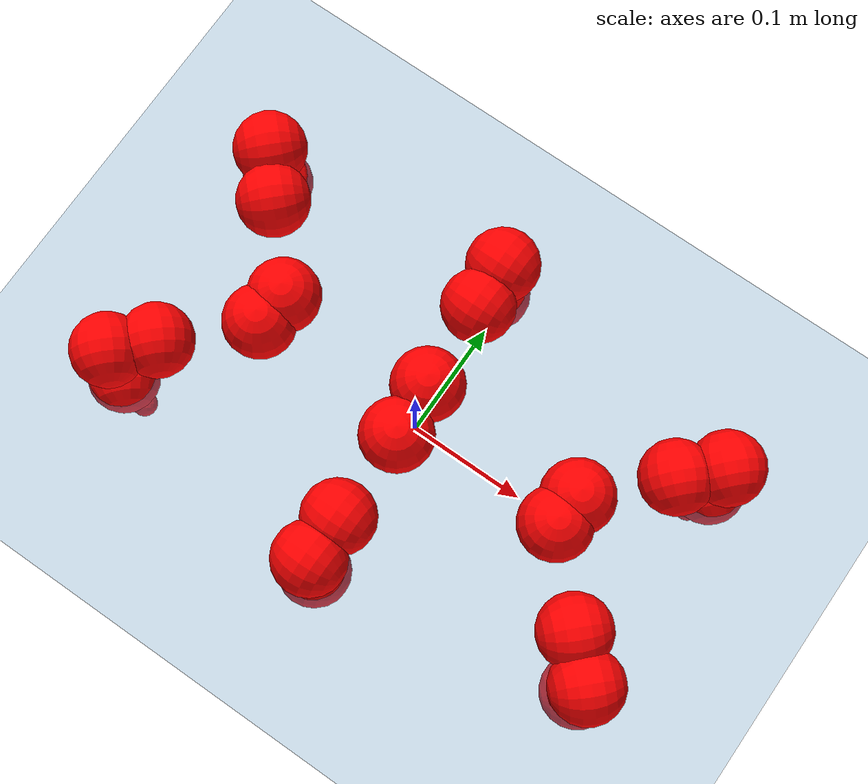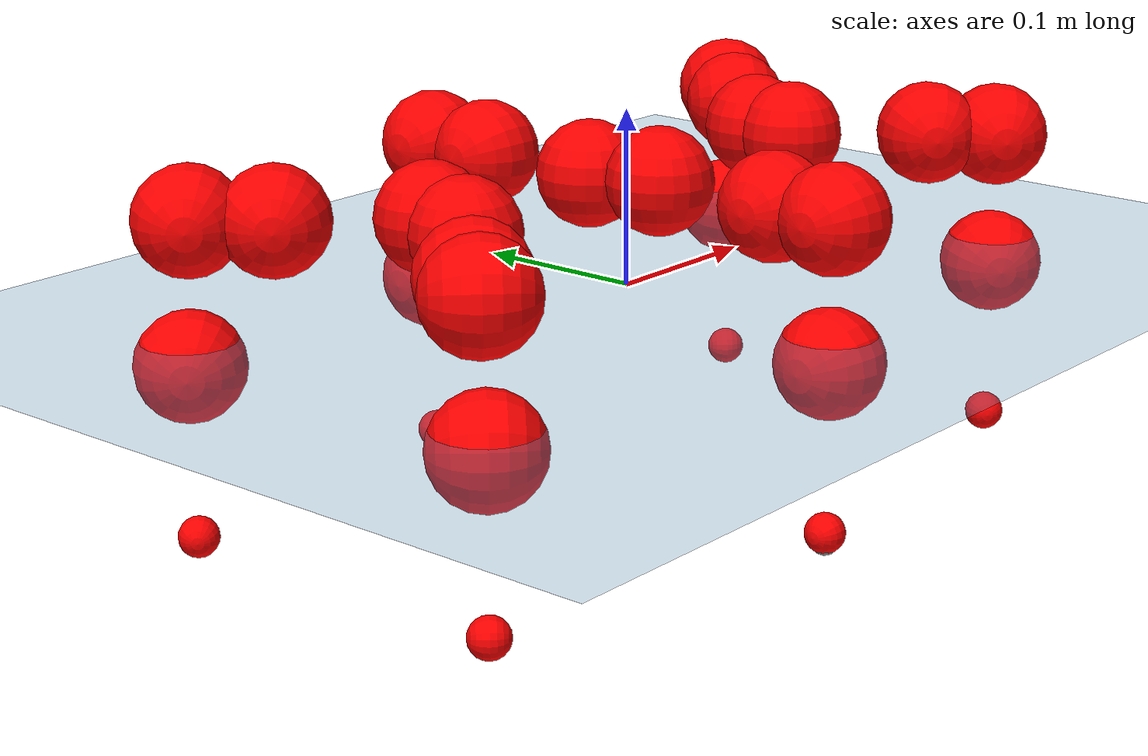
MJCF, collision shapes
<mujoco model="Golem">
  <compiler angle="radian" assetdir="assets" balanceinertia="true" inertiafromgeom="false"/>

  <option timestep="0.005" density="1.2" viscosity="2e-05"/>

  <size nkey="1"/>

  <visual>
    <quality shadowsize="8192"/>
    <map shadowclip="0.5"/>
  </visual>

  <default>
    <default class="/">
      <joint armature="0.01" damping="0.01" frictionloss="0.01"/>
      <geom contype="0" conaffinity="0" group="1" solref="-1000 -80"/>
      <site size="0.01 0.005 0.005" group="5"/>
      <general forcelimited="true" biastype="affine" gainprm="25" biasprm="0 -25 -0.5"/>
      <default class="visual">
        <geom type="mesh" group="2"/>
      </default>
      <default class="collision">
        <geom group="3"/>
      </default>
      <default class="foot">
        <geom size="0.01 0 0" condim="6" group="4" priority="1" solimp="0.015 1 0.01"/>
      </default>
      <default class="reward_collision_sphere">
        <geom group="5" rgba="1 0 0 1"/>
      </default>
    </default>
  </default>

  <asset>
    <texture type="skybox" colorspace="auto" name="//unnamed_texture_0" builtin="gradient" rgb1="0.95 0.95 0.95" rgb2="0.95 0.95 0.95" width="100" height="600"/>
    <texture type="2d" colorspace="auto" name="texplane" builtin="checker" rgb1="0.345 0.575 0.748" rgb2="0.345 0.575 0.748" markrgb="1 1 1" width="512" height="512"/>
    <material name="MatPlane" class="/" texture="texplane" texuniform="true" texrepeat="2 2" specular="0.9"/>
    <mesh name="body" class="/" file="body.stl" scale="0.001 0.001 0.001"/>
    <mesh name="coxa" class="/" file="coxa.stl" scale="0.001 0.001 0.001"/>
    <mesh name="femur" class="/" file="femur.stl" scale="0.001 0.001 0.001"/>
    <mesh name="tibia" class="/" file="tibia.stl" scale="0.001 0.001 0.001"/>
    <mesh name="tarsus" class="/" file="tarsus.stl" scale="0.001 0.001 0.001"/>
  </asset>

  <worldbody>
    <geom name="floor" class="/" size="100 100 0.125" type="plane" group="0" material="MatPlane"/>
    <light name="toplight_shadow" class="/" pos="0 0 5" dir="0.0990148 0.0990148 -0.990148" type="directional" ambient="0.04 0.04 0.04" diffuse="0.55 0.55 0.55" specular="0.12 0.12 0.12"/>
    <light name="toplight_fill" class="/" pos="0 0 5" dir="0.0990148 0.0990148 -0.990148" type="directional" castshadow="false" ambient="0.04 0.04 0.04" diffuse="0.3 0.3 0.3" specular="0.08 0.08 0.08"/>
    <body name="trunk" pos="-0.000337535 0.000326608 -0.000926607" quat="0.999999 -0.000604069 0.000285274 -0.00108096">
      <inertial pos="-9.27842e-05 -0.00119984 -0.00266075" quat="1 -0.000524636 -4.68829e-05 -0.000135549" mass="1.64445" diaginertia="0.00549781 7.42291e-05 0.00980113"/>
      <joint name="//unnamed_joint_0" type="free"/>
      <geom name="//unnamed_geom_1" class="/" pos="0 0 0.063901" quat="1 0 0 0" type="mesh" rgba="0.9 0.9 0.9 1" mesh="body"/>
      <site name="imu" class="/" pos="0.128994 -0.00785784 0.100469" size="0.00755173"/>
      <camera name="track" class="/" pos="0 -0.754513 0" quat="0.707107 0.707107 0 0" mode="trackcom"/>
      <camera name="ego_camera" class="/" pos="0.115675 0 0.0998454" quat="-0.5 -0.5 0.5 0.5"/>
      <body name="coxa_RR" pos="-0.159734 -0.0299757 0.0621055" quat="0.382529 0.000985285 0.000803392 -0.923943">
        <inertial pos="0.000421708 -0.000453092 0.00294277" quat="0.999951 -0.00418103 -0.00874134 -0.00183413" mass="0.0900363" diaginertia="0.0057789 7.93688e-05 0.0101722"/>
        <joint name="coxa_joint_RR" class="/" pos="0 0 0" axis="0.00017946 0.00075422 -1" range="-3.18879 3.08424" armature="0.00756913" damping="0.0131657" frictionloss="0.00817275"/>
        <geom name="//unnamed_geom_2" class="/" type="mesh" rgba="0.2 0.2 0.2 1" mesh="coxa"/>
        <geom name="//unnamed_geom_3" class="reward_collision_sphere" size="0.0302069" pos="-0.0266942 0 0"/>
        <body name="femur_RR" pos="0.054551 0.00140716 0.000158722" quat="0.499809 -0.500343 0.500236 0.499611">
          <inertial pos="0.000289096 -0.000650865 0.00116367" quat="1 -0.000208761 -0.000422474 -7.39784e-05" mass="0.0860943" diaginertia="0.00561493 7.72775e-05 0.00994023"/>
          <joint name="femur_joint_RR" class="/" pos="0 0 0" axis="-0.00369428 0.0044378 -0.999983" range="-3.08532 3.14654" armature="0.00648794" damping="0" frictionloss="0.0077371"/>
          <geom name="//unnamed_geom_4" class="/" type="mesh" rgba="0.9 0.9 0.9 1" mesh="femur"/>
          <geom name="//unnamed_geom_5" class="reward_collision_sphere" size="0.0302069"/>
          <body name="tibia_RR" pos="-0.00252169 -0.038408 0.00183023" quat="0.000499957 0.999999 -0.000666021 -0.000747888">
            <inertial pos="0.0026331 0.00184926 -0.000546941" quat="1 -0.000951532 0.000153567 -3.67299e-05" mass="0.0890323" diaginertia="0.00561092 7.68404e-05 0.00960879"/>
            <joint name="tibia_joint_RR" class="/" pos="0 0 0" axis="-0.0129151 -0.00299818 0.999912" range="-3.08552 3.14537" armature="0.00663462" damping="0" frictionloss="0.00793418"/>
            <geom name="//unnamed_geom_6" class="/" type="mesh" rgba="0.2 0.2 0.2 1" mesh="tibia"/>
            <geom name="//unnamed_geom_7" class="reward_collision_sphere" size="0.0302069"/>
            <body name="tarsus_RR" pos="0.0754282 0.00155655 -0.0020009" quat="1 -7.61064e-06 7.70386e-05 -3.00989e-05">
              <inertial pos="0.0519711 0.00131129 -0.00138524" quat="0.498725 0.500282 0.50214 0.498845" mass="0.0886293" diaginertia="0.00573966 7.61922e-05 0.0103161"/>
              <joint name="tarsus_joint_RR" class="/" pos="0 0 0" axis="-0.00721497 -0.00953662 0.999928" range="-3.15537 3.15646" armature="0.0079432" damping="0" frictionloss="0.0071482"/>
              <geom name="//unnamed_geom_8" class="/" type="mesh" rgba="0.9 0.9 0.9 1" mesh="tarsus"/>
              <geom name="foot_1" class="foot" size="0.00738274" pos="0.0996585 0 0" quat="0 -0.707107 0 0.707107"/>
              <geom name="//unnamed_geom_10" class="reward_collision_sphere" size="0.0302069"/>
              <geom name="//unnamed_geom_11" class="reward_collision_sphere" size="0.0113276" pos="0.0956543 0 0"/>
              <site name="foot_1" class="foot" pos="0.0996585 0 0" quat="0 -0.707107 0 0.707107" size="0.00755173"/>
            </body>
          </body>
        </body>
      </body>
      <body name="coxa_RM" pos="-0.000474909 -0.0511034 0.06444" quat="0.706606 9.08626e-05 0.00120935 -0.707606">
        <inertial pos="0.00125886 -0.00253201 0.00138174" quat="1 0.000508653 0.000207809 -0.000789101" mass="0.083978" diaginertia="0.00543833 7.67602e-05 0.00994076"/>
        <joint name="coxa_joint_RM" class="/" pos="0 0 0" axis="-0.01345 -0.0040615 -0.999901" range="-3.13191 3.19006" armature="0.00851382" damping="0" frictionloss="0.00670498"/>
        <geom name="//unnamed_geom_12" class="/" type="mesh" rgba="0.2 0.2 0.2 1" mesh="coxa"/>
        <geom name="//unnamed_geom_13" class="reward_collision_sphere" size="0.0302069" pos="-0.0266942 0 0"/>
        <body name="femur_RM" pos="0.0503032 0.000566819 -0.00130943" quat="0.499989 -0.499962 0.500026 0.500022">
          <inertial pos="0.00187116 -0.00108587 -0.000210435" quat="0.999989 -0.00217508 -0.000604434 -0.00411029" mass="0.0893565" diaginertia="0.00555164 7.82159e-05 0.0101477"/>
          <joint name="femur_joint_RM" class="/" pos="0 0 0" axis="-0.000124001 6.57678e-05 -1" range="-3.16047 3.12727" armature="0.00751416" damping="0.0123464" frictionloss="0.00833561"/>
          <geom name="//unnamed_geom_14" class="/" type="mesh" rgba="0.9 0.9 0.9 1" mesh="femur"/>
          <geom name="//unnamed_geom_15" class="reward_collision_sphere" size="0.0302069"/>
          <body name="tibia_RM" pos="0.000554243 -0.0384827 0.000187733" quat="0.000207057 1 0.000145279 0.000338749">
            <inertial pos="0.000281029 -0.00234682 -0.0027345" quat="0.999912 -0.00912139 -0.00857188 0.00433438" mass="0.0865277" diaginertia="0.00580668 7.71059e-05 0.0103177"/>
            <joint name="tibia_joint_RM" class="/" pos="0 0 0" axis="0.00109086 -0.00258931 0.999996" range="-3.16058 3.1291" armature="0.00849094" damping="0.00676306" frictionloss="0.00853734"/>
            <geom name="//unnamed_geom_16" class="/" type="mesh" rgba="0.2 0.2 0.2 1" mesh="tibia"/>
            <geom name="//unnamed_geom_17" class="reward_collision_sphere" size="0.0302069"/>
            <body name="tarsus_RM" pos="0.0782029 0.000181305 0.000838167" quat="1 6.03182e-05 -0.000358376 -6.62885e-06">
              <inertial pos="0.0556641 0.00045738 0.000578831" quat="0.502659 0.494977 0.494947 0.507305" mass="0.0850108" diaginertia="0.00564483 7.68641e-05 0.00967911"/>
              <joint name="tarsus_joint_RM" class="/" pos="0 0 0" axis="-3.28347e-05 -0.000594569 1" range="-3.0856 3.15866" armature="0.00857327" damping="0.00370366" frictionloss="0.00765652"/>
              <geom name="//unnamed_geom_18" class="/" type="mesh" rgba="0.9 0.9 0.9 1" mesh="tarsus"/>
              <geom name="foot_2" class="foot" size="0.00835762" pos="0.0996585 0 0" quat="0 -0.707107 0 0.707107"/>
              <geom name="//unnamed_geom_20" class="reward_collision_sphere" size="0.0302069"/>
              <geom name="//unnamed_geom_21" class="reward_collision_sphere" size="0.0113276" pos="0.0956543 0 0"/>
              <site name="foot_2" class="foot" pos="0.0996585 0 0" quat="0 -0.707107 0 0.707107" size="0.00755173"/>
            </body>
          </body>
        </body>
      </body>
      <body name="coxa_RF" pos="0.156367 -0.0305484 0.0650144" quat="0.923949 0.000208518 0.000173899 -0.382515">
        <inertial pos="-0.00208581 -0.00253536 0.00231822" quat="0.999937 0.0004209 0.0093168 0.00624762" mass="0.0864289" diaginertia="0.00571054 7.51244e-05 0.00987375"/>
        <joint name="coxa_joint_RF" class="/" pos="0 0 0" axis="0.00145341 -0.00140467 -0.999998" stiffness="0.000317209" range="-3.14878 3.19276" armature="0.00686647" damping="0.000177306" frictionloss="0.007856"/>
        <geom name="//unnamed_geom_22" class="/" type="mesh" rgba="0.2 0.2 0.2 1" mesh="coxa"/>
        <geom name="//unnamed_geom_23" class="reward_collision_sphere" size="0.0302069" pos="-0.0266942 0 0"/>
        <body name="femur_RF" pos="0.0551369 -0.00144292 -0.00121085" quat="0.500487 -0.500132 0.500476 0.498904">
          <inertial pos="0.000344572 -0.00258084 0.00280255" quat="0.999909 -0.00334176 -0.000239041 -0.0130312" mass="0.0868566" diaginertia="0.00543512 7.36464e-05 0.0100233"/>
          <joint name="femur_joint_RF" class="/" pos="0 0 0" axis="-0.000507931 0.000342877 -1" range="-3.09664 3.13667" armature="0.00728145" damping="0" frictionloss="0.00652935"/>
          <geom name="//unnamed_geom_24" class="/" type="mesh" rgba="0.9 0.9 0.9 1" mesh="femur"/>
          <geom name="//unnamed_geom_25" class="reward_collision_sphere" size="0.0302069"/>
          <body name="tibia_RF" pos="0.00200119 -0.0412724 0.00105125" quat="-0.000988502 0.999999 -0.000284504 -0.000687026">
            <inertial pos="-0.000314342 0.00179101 -0.000168612" quat="0.999946 0.00601972 0.00670433 0.00516209" mass="0.0871864" diaginertia="0.00565488 7.68424e-05 0.0101343"/>
            <joint name="tibia_joint_RF" class="/" pos="0 0 0" axis="0.0108411 -0.00556255 0.999926" range="-3.11768 3.12901" armature="0.00761143" damping="0.00126501" frictionloss="0.00757686"/>
            <geom name="//unnamed_geom_26" class="/" type="mesh" rgba="0.2 0.2 0.2 1" mesh="tibia"/>
            <geom name="//unnamed_geom_27" class="reward_collision_sphere" size="0.0302069"/>
            <body name="tarsus_RF" pos="0.0778438 -1.8911e-05 -0.00098823" quat="0.999999 -0.000171434 0.00138087 0.00013556">
              <inertial pos="0.0506865 0.000302885 0.00257527" quat="0.494089 0.5004 0.496044 0.509329" mass="0.0817097" diaginertia="0.00557201 7.47362e-05 0.00960466"/>
              <joint name="tarsus_joint_RF" class="/" pos="0 0 0" axis="0.013937 -0.00580281 0.999886" range="-3.086 3.1206" armature="0.00760462" damping="0" frictionloss="0.0083311"/>
              <geom name="//unnamed_geom_28" class="/" type="mesh" rgba="0.9 0.9 0.9 1" mesh="tarsus"/>
              <geom name="foot_3" class="foot" size="0.00737401" pos="0.0996585 0 0" quat="0 -0.707107 0 0.707107"/>
              <geom name="//unnamed_geom_30" class="reward_collision_sphere" size="0.0302069"/>
              <geom name="//unnamed_geom_31" class="reward_collision_sphere" size="0.0113276" pos="0.0956543 0 0"/>
              <site name="foot_3" class="foot" pos="0.0996585 0 0" quat="0 -0.707107 0 0.707107" size="0.00755173"/>
            </body>
          </body>
        </body>
      </body>
      <body name="coxa_LR" pos="-0.156015 0.0350482 0.0650316" quat="0.381416 -0.000112417 0.000411591 0.924404">
        <inertial pos="0.00304968 0.000375072 -0.00107444" quat="0.999925 -0.00959623 -0.00624762 -0.00431452" mass="0.0856996" diaginertia="0.0054888 7.6269e-05 0.00990287"/>
        <joint name="coxa_joint_LR" class="/" pos="0 0 0" axis="-0.0019623 -0.0112422 -0.999935" range="-3.1171 3.13167" armature="0.00745136" damping="0.00534409" frictionloss="0.00736781"/>
        <geom name="//unnamed_geom_32" class="/" type="mesh" rgba="0.2 0.2 0.2 1" mesh="coxa"/>
        <geom name="//unnamed_geom_33" class="reward_collision_sphere" size="0.0302069" pos="-0.0266942 0 0"/>
        <body name="femur_LR" pos="0.053548 -0.00407031 -0.000769033" quat="0.500804 -0.500008 0.498863 0.500323">
          <inertial pos="-0.00034151 0.000338052 -4.09061e-05" quat="0.999997 -0.000390202 -0.00211341 -0.00133914" mass="0.0875853" diaginertia="0.00559897 7.68746e-05 0.0100678"/>
          <joint name="femur_joint_LR" class="/" pos="0 0 0" axis="0.000367929 0.00015811 1" range="-3.12053 3.18926" armature="0.00769607" damping="0" frictionloss="0.00853697"/>
          <geom name="//unnamed_geom_34" class="/" type="mesh" rgba="0.9 0.9 0.9 1" mesh="femur"/>
          <geom name="//unnamed_geom_35" class="reward_collision_sphere" size="0.0302069"/>
          <body name="tibia_LR" pos="2.6965e-05 -0.0440256 -0.00443564" quat="-6.40986e-05 1 -0.000312355 -0.000236984">
            <inertial pos="-8.86745e-05 -0.0020661 0.00223692" quat="0.999992 6.81229e-05 -0.0032084 -0.00230193" mass="0.0859274" diaginertia="0.00564706 7.95903e-05 0.0100698"/>
            <joint name="tibia_joint_LR" class="/" pos="0 0 0" axis="-0.0042732 -0.00252573 -0.999988" range="-3.15197 3.08493" armature="0.0065729" damping="0.00351665" frictionloss="0.00709871"/>
            <geom name="//unnamed_geom_36" class="/" type="mesh" rgba="0.2 0.2 0.2 1" mesh="tibia"/>
            <geom name="//unnamed_geom_37" class="reward_collision_sphere" size="0.0302069"/>
            <body name="tarsus_LR" pos="0.0784171 0.0025582 -0.00014291" quat="1 -0.000415995 0.0002613 0.000131392">
              <inertial pos="0.0539214 -0.000405745 0.000756519" quat="0.501557 0.50062 0.498694 0.499123" mass="0.0847362" diaginertia="0.00549958 7.52764e-05 0.00986184"/>
              <joint name="tarsus_joint_LR" class="/" pos="0 0 0" axis="-0.00143699 -0.000765074 -0.999999" range="-3.08513 3.14214" armature="0.00761404" damping="0" frictionloss="0.00719292"/>
              <geom name="//unnamed_geom_38" class="/" type="mesh" rgba="0.9 0.9 0.9 1" mesh="tarsus"/>
              <geom name="foot_4" class="foot" size="0.00681801" pos="0.0996585 0 0" quat="0.707107 0 -0.707107 0"/>
              <geom name="//unnamed_geom_40" class="reward_collision_sphere" size="0.0302069"/>
              <geom name="//unnamed_geom_41" class="reward_collision_sphere" size="0.0113276" pos="0.0956543 0 0"/>
              <site name="foot_4" class="foot" pos="0.0996585 0 0" quat="0.707107 0 -0.707107 0" size="0.00755173"/>
            </body>
          </body>
        </body>
      </body>
      <body name="coxa_LM" pos="-0.00397912 0.0492132 0.0622293" quat="0.706129 -9.02796e-05 -2.36132e-05 0.708083">
        <inertial pos="0.000239034 2.81387e-05 0.00235702" quat="0.999995 0.00214276 -0.00180909 -0.00132827" mass="0.0890628" diaginertia="0.00594124 7.89593e-05 0.0103176"/>
        <joint name="coxa_joint_LM" class="/" pos="0 0 0" axis="0.000397938 -3.85048e-05 -1" stiffness="0.00621076" range="-3.19051 3.15914" armature="0.0067008" damping="0.00248629" frictionloss="0.0084906"/>
        <geom name="//unnamed_geom_42" class="/" type="mesh" rgba="0.2 0.2 0.2 1" mesh="coxa"/>
        <geom name="//unnamed_geom_43" class="reward_collision_sphere" size="0.0302069" pos="-0.0266942 0 0"/>
        <body name="femur_LM" pos="0.0477707 0.00369102 0.00151478" quat="0.500041 -0.499932 0.500045 0.499983">
          <inertial pos="-0.000101262 -0.00236558 0.000508398" quat="0.999967 0.000301778 -0.00176874 -0.00793758" mass="0.0809069" diaginertia="0.00543217 7.43766e-05 0.00964485"/>
          <joint name="femur_joint_LM" class="/" pos="0 0 0" axis="0.00709097 -0.00375639 0.999968" range="-3.15812 3.14612" armature="0.00711966" damping="0.00267889" frictionloss="0.00825139"/>
          <geom name="//unnamed_geom_44" class="/" type="mesh" rgba="0.9 0.9 0.9 1" mesh="femur"/>
          <geom name="//unnamed_geom_45" class="reward_collision_sphere" size="0.0302069"/>
          <body name="tibia_LM" pos="-0.000731197 -0.0386399 0.00275837" quat="-0.000289379 1 0.000179977 3.14889e-05">
            <inertial pos="-0.00263944 0.000754732 -0.000665115" quat="1 -0.00013745 0.000319751 2.13538e-05" mass="0.0876225" diaginertia="0.00532652 7.59237e-05 0.00974074"/>
            <joint name="tibia_joint_LM" class="/" pos="0 0 0" axis="0.000622858 0.000245796 -1" range="-3.09366 3.14222" armature="0.00747795" damping="0" frictionloss="0.00701217"/>
            <geom name="//unnamed_geom_46" class="/" type="mesh" rgba="0.2 0.2 0.2 1" mesh="tibia"/>
            <geom name="//unnamed_geom_47" class="reward_collision_sphere" size="0.0302069"/>
            <body name="tarsus_LM" pos="0.0804593 -0.000208417 -0.00296534" quat="1 -3.39342e-05 -1.34377e-06 -2.25e-05">
              <inertial pos="0.0523607 0.000374636 -0.000211946" quat="0.501563 0.49872 0.498147 0.50156" mass="0.0830675" diaginertia="0.00547626 7.55322e-05 0.0101076"/>
              <joint name="tarsus_joint_LM" class="/" pos="0 0 0" axis="0.00849182 -0.00644448 -0.999943" range="-3.15164 3.09333" armature="0.00761545" damping="0.0123958" frictionloss="0.00658884"/>
              <geom name="//unnamed_geom_48" class="/" type="mesh" rgba="0.9 0.9 0.9 1" mesh="tarsus"/>
              <geom name="foot_5" class="foot" size="0.00729942" pos="0.0996585 0 0" quat="0.707107 0 -0.707107 0"/>
              <geom name="//unnamed_geom_50" class="reward_collision_sphere" size="0.0302069"/>
              <geom name="//unnamed_geom_51" class="reward_collision_sphere" size="0.0113276" pos="0.0956543 0 0"/>
              <site name="foot_5" class="foot" pos="0.0996585 0 0" quat="0.707107 0 -0.707107 0" size="0.00755173"/>
            </body>
          </body>
        </body>
      </body>
      <body name="coxa_LF" pos="0.158844 0.0341415 0.0654325" quat="0.92409 -0.000249859 3.60125e-05 0.382174">
        <inertial pos="0.00114927 -0.00208557 0.000582469" quat="0.99999 0.00182718 -0.00418892 -0.000262601" mass="0.0841046" diaginertia="0.00539842 7.16497e-05 0.00966209"/>
        <joint name="coxa_joint_LF" class="/" pos="0 0 0" axis="-0.00986196 -0.00160822 -0.99995" range="-3.18122 3.13973" armature="0.00744416" damping="0" frictionloss="0.00798266"/>
        <geom name="//unnamed_geom_52" class="/" type="mesh" rgba="0.2 0.2 0.2 1" mesh="coxa"/>
        <geom name="//unnamed_geom_53" class="reward_collision_sphere" size="0.0302069" pos="-0.0266942 0 0"/>
        <body name="femur_LF" pos="0.0504828 0.00196805 -0.0018028" quat="0.499633 -0.500687 0.499573 0.500106">
          <inertial pos="-0.000717349 0.000280552 0.000871367" quat="0.999917 0.00108368 0.0128529 0.000280845" mass="0.0860808" diaginertia="0.00560307 7.3672e-05 0.00969177"/>
          <joint name="femur_joint_LF" class="/" pos="0 0 0" axis="0.0102787 -0.0040668 0.999939" range="-3.13308 3.12432" armature="0.00765883" damping="0.0079059" frictionloss="0.00660427"/>
          <geom name="//unnamed_geom_54" class="/" type="mesh" rgba="0.9 0.9 0.9 1" mesh="femur"/>
          <geom name="//unnamed_geom_55" class="reward_collision_sphere" size="0.0302069"/>
          <body name="tibia_LF" pos="-0.000939365 -0.0399498 -0.00018527" quat="1.72317e-05 1 -9.14905e-05 -1.89657e-05">
            <inertial pos="-0.000810147 0.000313778 0.000590104" quat="0.999987 -0.00352907 -0.00181182 -0.00334539" mass="0.0880047" diaginertia="0.00560351 7.52221e-05 0.00974855"/>
            <joint name="tibia_joint_LF" class="/" pos="0 0 0" axis="-0.00527262 0.00921169 -0.999944" stiffness="0.00210794" range="-3.19228 3.14123" armature="0.00801466" damping="0.0098973" frictionloss="0.00679036"/>
            <geom name="//unnamed_geom_56" class="/" type="mesh" rgba="0.2 0.2 0.2 1" mesh="tibia"/>
            <geom name="//unnamed_geom_57" class="reward_collision_sphere" size="0.0302069"/>
            <body name="tarsus_LF" pos="0.0788495 0.000175626 0.000970294" quat="1 1.33288e-05 6.14883e-05 -0.000165004">
              <inertial pos="0.0536643 -0.000343759 0.00273532" quat="0.500796 0.498601 0.50043 0.50017" mass="0.0871399" diaginertia="0.0055351 7.63458e-05 0.00983589"/>
              <joint name="tarsus_joint_LF" class="/" pos="0 0 0" axis="-0.0139629 0.00212994 -0.9999" stiffness="0.0318878" range="-3.13442 3.16854" armature="0.0073986" damping="0.0238103" frictionloss="0.00723218"/>
              <geom name="//unnamed_geom_58" class="/" type="mesh" rgba="0.9 0.9 0.9 1" mesh="tarsus"/>
              <geom name="foot_6" class="foot" size="0.007485" pos="0.0996585 0 0" quat="0.707107 0 -0.707107 0"/>
              <geom name="//unnamed_geom_60" class="reward_collision_sphere" size="0.0302069"/>
              <geom name="//unnamed_geom_61" class="reward_collision_sphere" size="0.0113276" pos="0.0956543 0 0"/>
              <site name="foot_6" class="foot" pos="0.0996585 0 0" quat="0.707107 0 -0.707107 0" size="0.00755173"/>
            </body>
          </body>
        </body>
      </body>
    </body>
  </worldbody>

  <contact>
    <pair class="/" geom1="floor" geom2="foot_1" name="//unnamed_contact_0"/>
    <pair class="/" geom1="floor" geom2="foot_2" name="//unnamed_contact_1"/>
    <pair class="/" geom1="floor" geom2="foot_3" name="//unnamed_contact_2"/>
    <pair class="/" geom1="floor" geom2="foot_4" name="//unnamed_contact_3"/>
    <pair class="/" geom1="floor" geom2="foot_5" name="//unnamed_contact_4"/>
    <pair class="/" geom1="floor" geom2="foot_6" name="//unnamed_contact_5"/>
  </contact>

  <actuator>
    <general name="coxa_joint_RR" class="/" joint="coxa_joint_RR" forcerange="-5.9799 5.9799" gainprm="17.2826" biasprm="0 -17.2826 -0.365778"/>
    <general name="femur_joint_RR" class="/" joint="femur_joint_RR" forcerange="-5.61188 5.61188" gainprm="17.2826" biasprm="0 -17.2826 -0.365778"/>
    <general name="tibia_joint_RR" class="/" joint="tibia_joint_RR" forcerange="-5.70524 5.70524" gainprm="17.2826" biasprm="0 -17.2826 -0.365778"/>
    <general name="tarsus_joint_RR" class="/" joint="tarsus_joint_RR" forcerange="-5.29318 5.29318" gainprm="17.2826" biasprm="0 -17.2826 -0.365778"/>
    <general name="coxa_joint_RM" class="/" joint="coxa_joint_RM" forcerange="-5.99015 5.99015" gainprm="17.2826" biasprm="0 -17.2826 -0.365778"/>
    <general name="femur_joint_RM" class="/" joint="femur_joint_RM" forcerange="-6.05144 6.05144" gainprm="17.2826" biasprm="0 -17.2826 -0.365778"/>
    <general name="tibia_joint_RM" class="/" joint="tibia_joint_RM" forcerange="-5.38589 5.38589" gainprm="17.2826" biasprm="0 -17.2826 -0.365778"/>
    <general name="tarsus_joint_RM" class="/" joint="tarsus_joint_RM" forcerange="-6.05585 6.05585" gainprm="17.2826" biasprm="0 -17.2826 -0.365778"/>
    <general name="coxa_joint_RF" class="/" joint="coxa_joint_RF" forcerange="-6.07242 6.07242" gainprm="17.2826" biasprm="0 -17.2826 -0.365778"/>
    <general name="femur_joint_RF" class="/" joint="femur_joint_RF" forcerange="-4.954 4.954" gainprm="17.2826" biasprm="0 -17.2826 -0.365778"/>
    <general name="tibia_joint_RF" class="/" joint="tibia_joint_RF" forcerange="-5.44203 5.44203" gainprm="17.2826" biasprm="0 -17.2826 -0.365778"/>
    <general name="tarsus_joint_RF" class="/" joint="tarsus_joint_RF" forcerange="-5.55433 5.55433" gainprm="17.2826" biasprm="0 -17.2826 -0.365778"/>
    <general name="coxa_joint_LR" class="/" joint="coxa_joint_LR" forcerange="-5.71393 5.71393" gainprm="17.2826" biasprm="0 -17.2826 -0.365778"/>
    <general name="femur_joint_LR" class="/" joint="femur_joint_LR" forcerange="-5.07607 5.07607" gainprm="17.2826" biasprm="0 -17.2826 -0.365778"/>
    <general name="tibia_joint_LR" class="/" joint="tibia_joint_LR" forcerange="-5.4147 5.4147" gainprm="17.2826" biasprm="0 -17.2826 -0.365778"/>
    <general name="tarsus_joint_LR" class="/" joint="tarsus_joint_LR" forcerange="-5.68182 5.68182" gainprm="17.2826" biasprm="0 -17.2826 -0.365778"/>
    <general name="coxa_joint_LM" class="/" joint="coxa_joint_LM" forcerange="-5.54205 5.54205" gainprm="17.2826" biasprm="0 -17.2826 -0.365778"/>
    <general name="femur_joint_LM" class="/" joint="femur_joint_LM" forcerange="-5.52889 5.52889" gainprm="17.2826" biasprm="0 -17.2826 -0.365778"/>
    <general name="tibia_joint_LM" class="/" joint="tibia_joint_LM" forcerange="-4.9687 4.9687" gainprm="17.2826" biasprm="0 -17.2826 -0.365778"/>
    <general name="tarsus_joint_LM" class="/" joint="tarsus_joint_LM" forcerange="-5.50062 5.50062" gainprm="17.2826" biasprm="0 -17.2826 -0.365778"/>
    <general name="coxa_joint_LF" class="/" joint="coxa_joint_LF" forcerange="-6.05408 6.05408" gainprm="17.2826" biasprm="0 -17.2826 -0.365778"/>
    <general name="femur_joint_LF" class="/" joint="femur_joint_LF" forcerange="-6.06337 6.06337" gainprm="17.2826" biasprm="0 -17.2826 -0.365778"/>
    <general name="tibia_joint_LF" class="/" joint="tibia_joint_LF" forcerange="-5.41872 5.41872" gainprm="17.2826" biasprm="0 -17.2826 -0.365778"/>
    <general name="tarsus_joint_LF" class="/" joint="tarsus_joint_LF" forcerange="-5.66539 5.66539" gainprm="17.2826" biasprm="0 -17.2826 -0.365778"/>
  </actuator>

  <sensor>
    <gyro site="imu" name="imu_angular_velocity"/>
    <velocimeter site="imu" name="imu_linear_velocity"/>
    <framelinvel objtype="site" objname="foot_1" name="foot_1_global_linear_velocity"/>
    <framelinvel objtype="site" objname="foot_2" name="foot_2_global_linear_velocity"/>
    <framelinvel objtype="site" objname="foot_3" name="foot_3_global_linear_velocity"/>
    <framelinvel objtype="site" objname="foot_4" name="foot_4_global_linear_velocity"/>
    <framelinvel objtype="site" objname="foot_5" name="foot_5_global_linear_velocity"/>
    <framelinvel objtype="site" objname="foot_6" name="foot_6_global_linear_velocity"/>
  </sensor>

  <keyframe>
    <key name="home" qpos="0 0 0.1457 1 0 0 0 0 0 0 0 0 0 0 0 0 0 0 0 0 0 0 0 0 0 0 0 0 0 0 0"/>
  </keyframe>
</mujoco>
